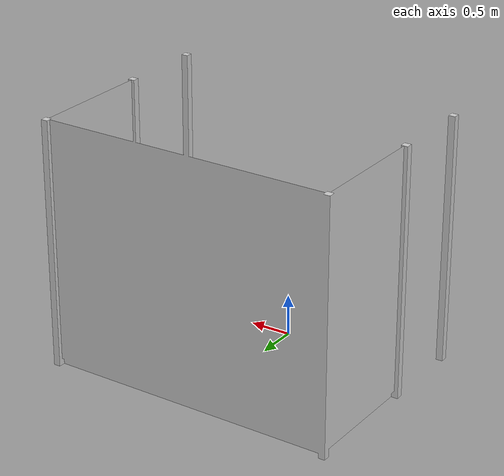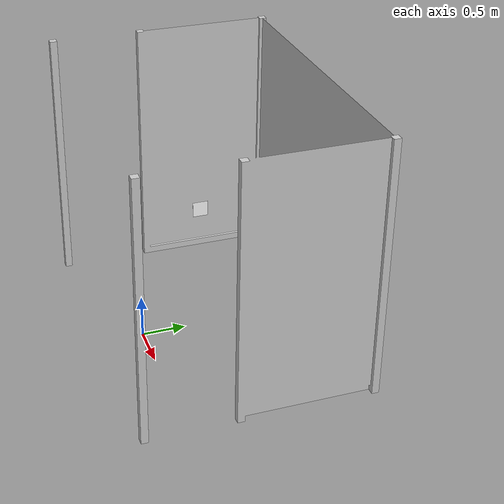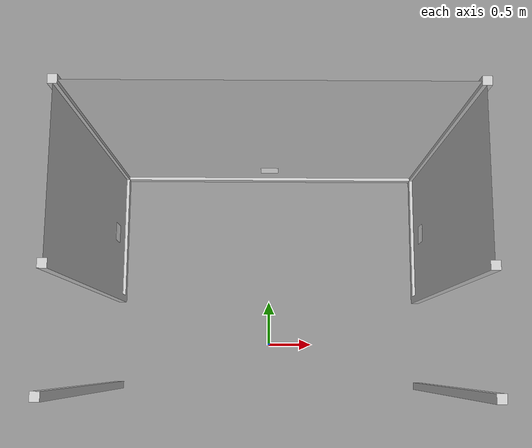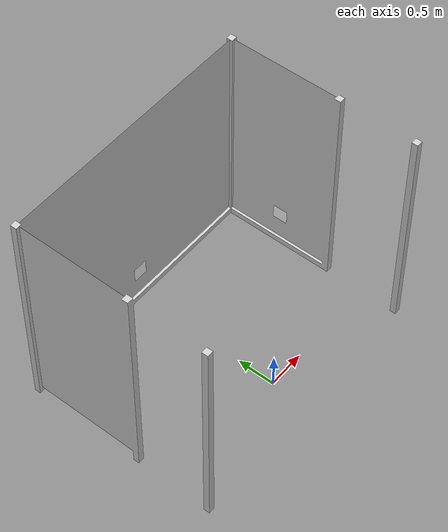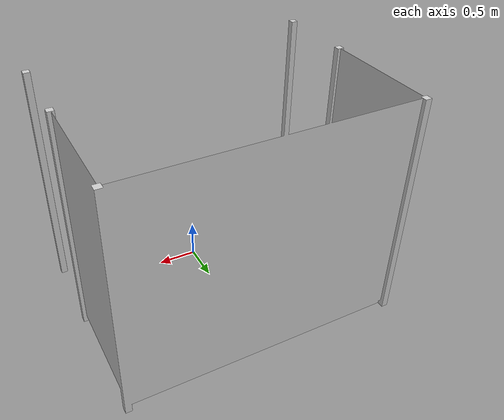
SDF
<?xml version="1.0"?>
<sdf version="1.11">
  <world name="logimat">

    <physics name="2ms" type="Bullet">
      <max_step_size>0.002</max_step_size>
      <real_time_factor>1.0</real_time_factor>
      <real_time_update_rate>500</real_time_update_rate>
    </physics>

    <!-- Plugins-->
    <plugin filename="gz-sim-physics-system" name="gz::sim::systems::Physics"></plugin>
    <plugin filename="gz-sim-user-commands-system" name="gz::sim::systems::UserCommands"></plugin>
    <plugin filename="gz-sim-scene-broadcaster-system" name="gz::sim::systems::SceneBroadcaster"></plugin>
    <plugin filename="gz-sim-contact-system" name="gz::sim::systems::Contact"></plugin>

    <!-- Sensor Plugins-->
    <plugin filename="gz-sim-imu-system" name="gz::sim::systems::Imu"></plugin>
    <plugin filename="gz-sim-sensors-system" name="gz::sim::systems::Sensors">
      <render_engine>ogre2</render_engine>
    </plugin>

    <!-- Our Logimat booth -->
    <include>
      <uri>model://logimat</uri>
      <pose>0 2 0 0 0 0</pose>
    </include>

    <!-- Apriltag large wall -->
    <include>
      <uri>model://Apriltag41_12_00000</uri>
      <pose>0 2 0.5 1.5707 -1.5707 0</pose>
    </include>

    <!-- Apriltag right wall -->
    <include>
      <uri>model://Apriltag41_12_00001</uri>
      <pose>1.7325 1.2575 0.5 0 1.5707 0</pose>
    </include>

    <!-- Apriltag left wall -->
    <include>
      <uri>model://Apriltag41_12_00002</uri>
      <pose>-1.7325 1.2575 0.5 3.1416 -1.5707 0</pose>
    </include>

    <model name="ground_plane">
      <static>true</static>
        <link name="link">
            <collision name="collision">
                <geometry>
                    <plane>
                        <normal>0 0 1</normal>
                    </plane>
                </geometry>
            </collision>
        </link>
    </model>

    <!-- Lighting -->
    <light name="light" type="point">
      <pose>0 0 8.5 0 0 0</pose>
      <diffuse>0.5 0.5 0.5 1</diffuse>
      <specular>0.2 0.2 0.2 1</specular>
      <attenuation>
        <range>80</range>
        <constant>0.3</constant>
        <linear>0.01</linear>
        <quadratic>0.001</quadratic>
      </attenuation>
      <cast_shadows>1</cast_shadows>
      <direction>0.1 0.1 -1</direction>
    </light>
  </world>
</sdf>

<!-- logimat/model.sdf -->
<sdf version="1.9">
  <model name="logimat">
    <link name="link">

      <collision name="collision">
        <geometry>
          <mesh>
            <uri>meshes/logimat.stl</uri>
            <scale>1 1 1</scale>
          </mesh>
        </geometry>
        <surface>
          <friction>
            <ode>
              <mu>0.5</mu>
              <mu2>0.5</mu2>
              <fdir1>0 0 0</fdir1>
              <slip1>0</slip1>
              <slip2>0</slip2>
            </ode>
          </friction>
        </surface>
      </collision>

      <visual name="visual">
        <geometry>
          <mesh>
            <uri>meshes/logimat.stl</uri>
            <scale>0.001 0.001 0.001</scale>
          </mesh>
        </geometry>

        <material>
          <ambient>0.8 0.8 0.8 1.0</ambient>
          <diffuse>0.8 0.8 0.8 1.0</diffuse>
          <specular>0.1 0.1 0.1 1.0</specular>
        </material>
        <meta> <layer> 2 </layer></meta>
      </visual>
    </link>
    <static>1</static>
  </model>
</sdf>

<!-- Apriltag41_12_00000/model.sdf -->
<sdf version="1.9">
  <model name="tag41_12_00000">
    <static>true</static>
    <link name="link">
      <visual name="visual">
        <geometry>
          <box>
            <size>0.2 0.2 0.001</size>
          </box>
        </geometry>
        <material>
          <ambient>1 1 1 1</ambient>
          <diffuse>1 1 1 1</diffuse>
          <specular>0.5 0.5 0.5 1</specular>
          <pbr>
            <metal>
              <albedo_map>materials/textures/tag41_12_00000.png</albedo_map>
              <roughness>0.5</roughness>
              <metalness>0.0</metalness>
            </metal>
          </pbr>
        </material>
      </visual>
      <collision name="collision">
        <geometry>
          <box>
            <size>0.2 0.2 0.001</size>
          </box>
        </geometry>
      </collision>
    </link>
  </model>
</sdf>

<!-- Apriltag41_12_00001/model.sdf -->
<sdf version="1.9">
  <model name="tag41_12_00001">
    <static>true</static>
    <link name="link">
      <visual name="visual">
        <geometry>
          <box>
            <size>0.2 0.2 0.001</size>
          </box>
        </geometry>
        <material>
          <ambient>1 1 1 1</ambient>
          <diffuse>1 1 1 1</diffuse>
          <specular>0.5 0.5 0.5 1</specular>
          <pbr>
            <metal>
              <albedo_map>materials/textures/tag41_12_00001.png</albedo_map>
              <roughness>0.5</roughness>
              <metalness>0.0</metalness>
            </metal>
          </pbr>
        </material>
      </visual>
      <collision name="collision">
        <geometry>
          <box>
            <size>0.2 0.2 0.001</size>
          </box>
        </geometry>
      </collision>
    </link>
  </model>
</sdf>

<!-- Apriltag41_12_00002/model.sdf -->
<sdf version="1.9">
  <model name="tag41_12_00002">
    <static>true</static>
    <link name="link">
      <visual name="visual">
        <geometry>
          <box>
            <size>0.2 0.2 0.001</size>
          </box>
        </geometry>
        <material>
          <ambient>1 1 1 1</ambient>
          <diffuse>1 1 1 1</diffuse>
          <specular>0.5 0.5 0.5 1</specular>
          <pbr>
            <metal>
              <albedo_map>materials/textures/tag41_12_00002.png</albedo_map>
              <roughness>0.5</roughness>
              <metalness>0.0</metalness>
            </metal>
          </pbr>
        </material>
      </visual>
      <collision name="collision">
        <geometry>
          <box>
            <size>0.2 0.2 0.001</size>
          </box>
        </geometry>
      </collision>
    </link>
  </model>
</sdf>
